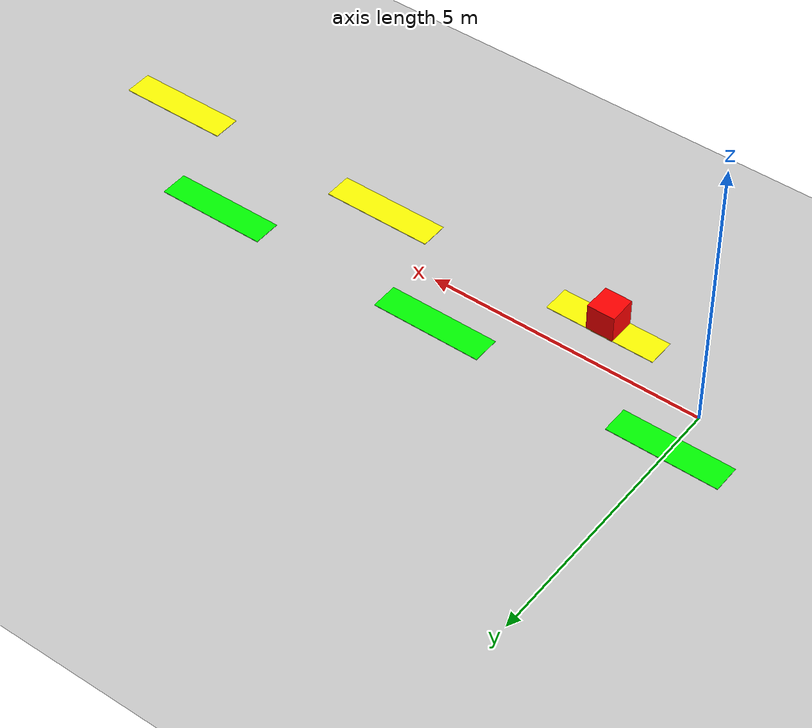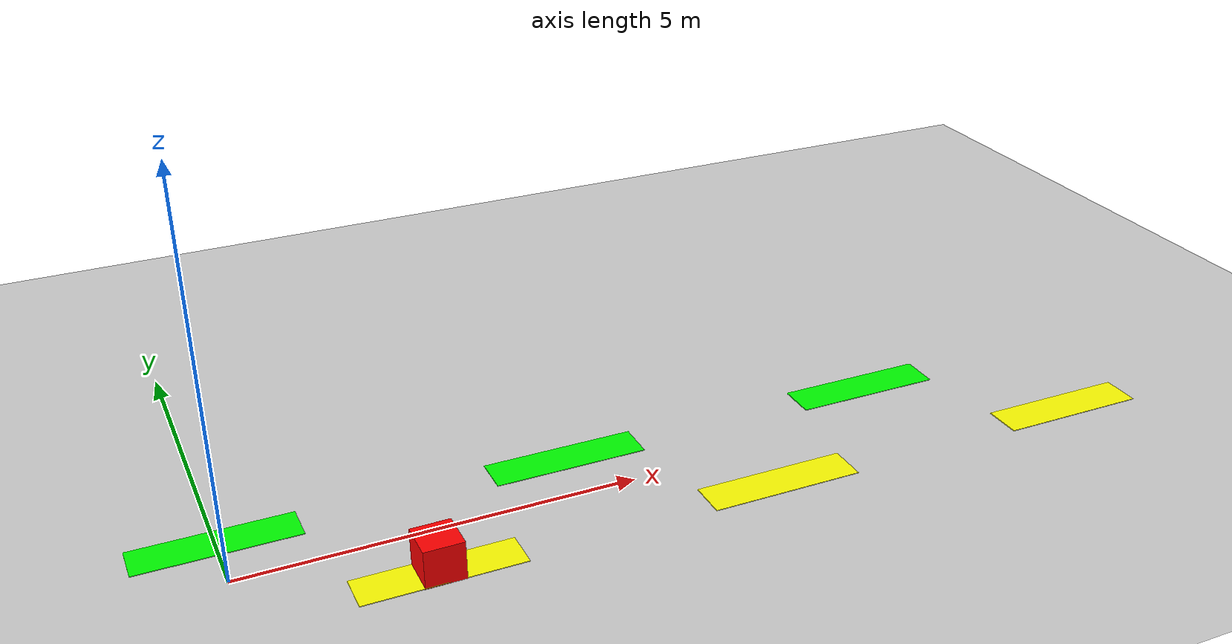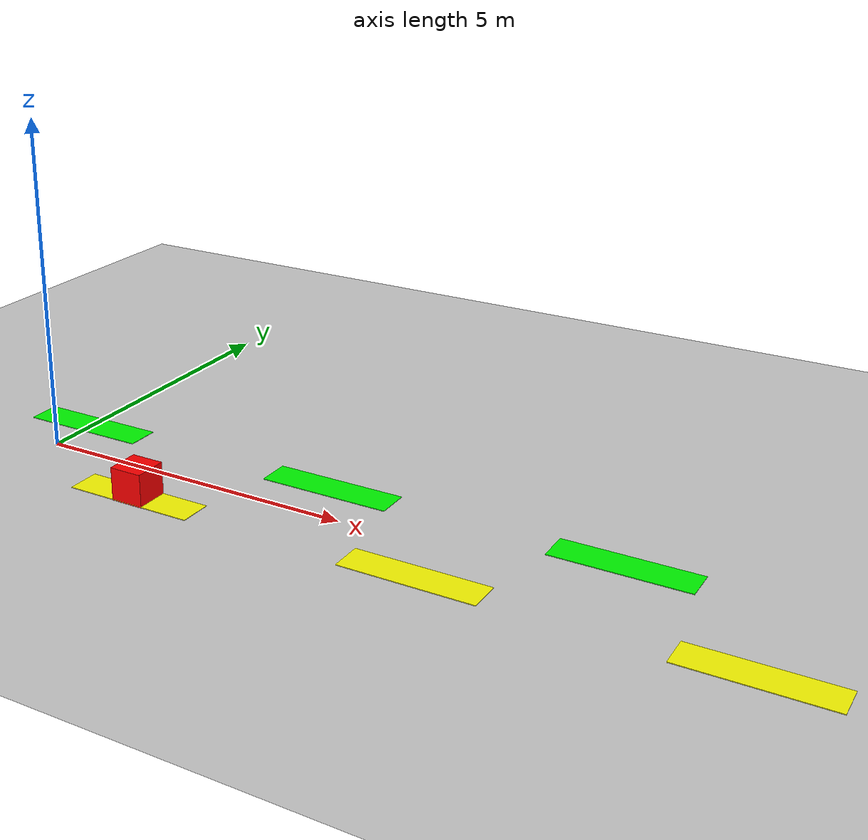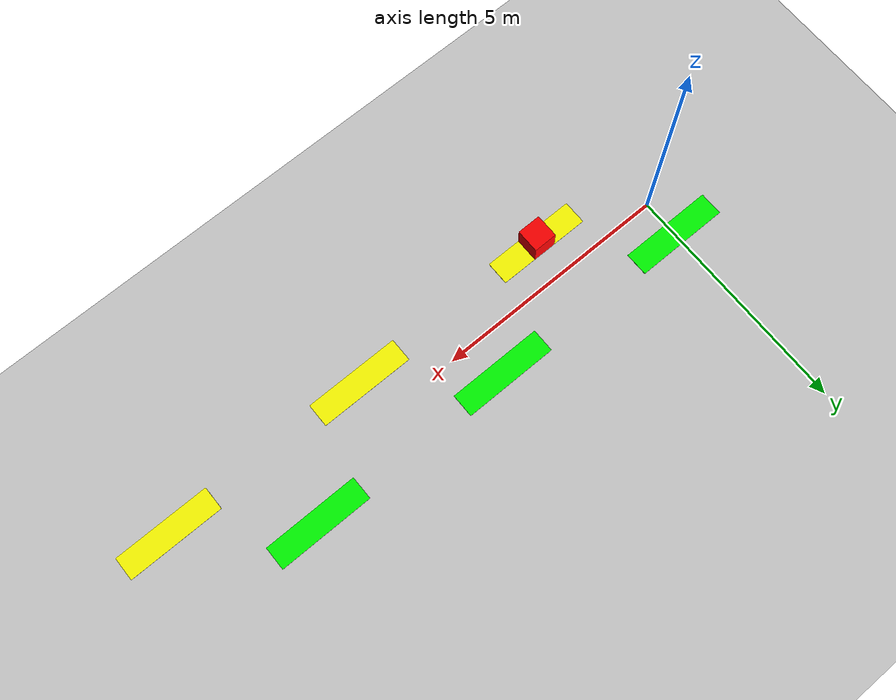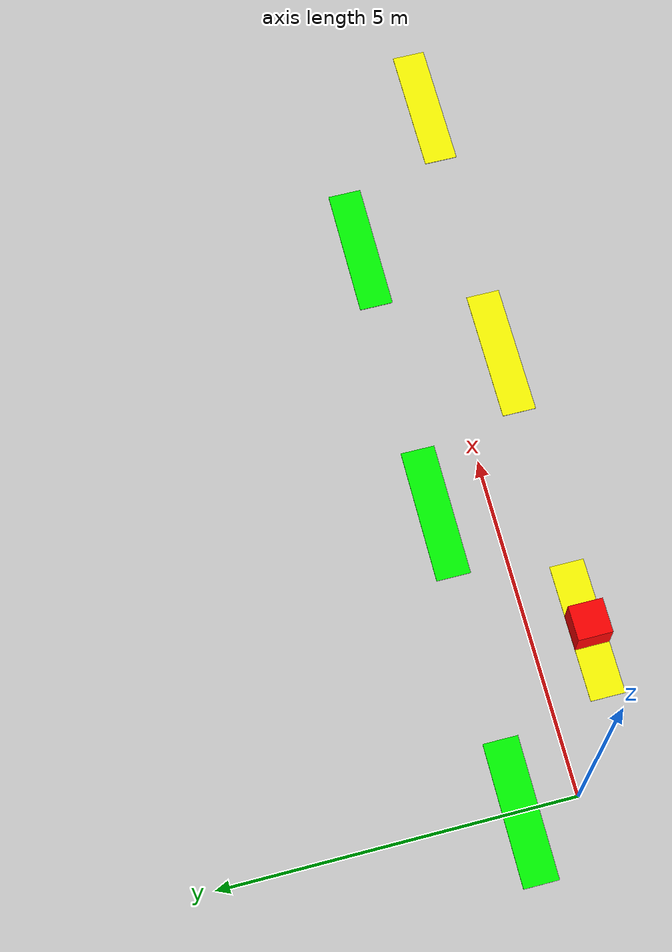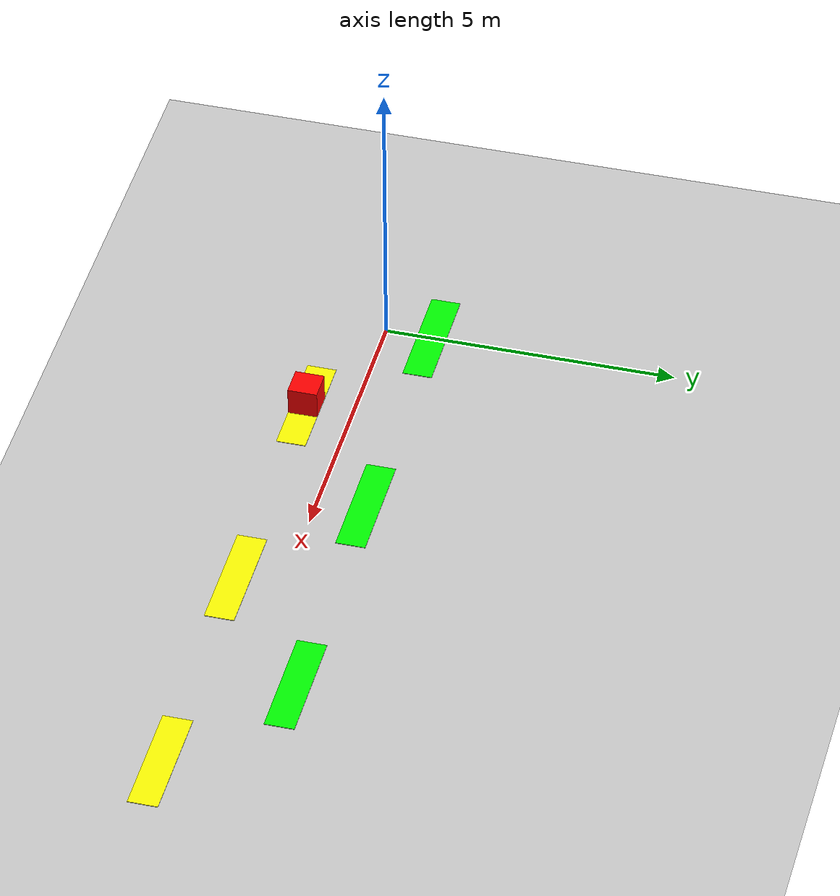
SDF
<?xml version="1.0" ?>
<sdf version="1.6">
  <world name="zigzag_lane_world">
    <include>
      <uri>model://sun</uri>
    </include>
    <include>
      <uri>model://ground_plane</uri>
    </include>

    <!-- Zigzag Lanes: Alternating Green and Yellow -->
    <model name="zigzag_lane">
      <static>true</static>
      <link name="zigzag_lane_link">

        <!-- Lane 0 - Green -->
        <visual name="lane_section_0">
          <pose>0.0 0.8 0.01 0 0 0</pose>
          <geometry>
            <box><size>2.0 0.5 0.01</size></box>
          </geometry>
          <material>
            <ambient>0 1 0 1</ambient>
            <diffuse>0 1 0 1</diffuse>
          </material>
        </visual>

        <!-- Lane 1 - Yellow -->
        <visual name="lane_section_1">
          <pose>2.2 -0.8 0.01 0 0 0</pose>
          <geometry>
            <box><size>2.0 0.5 0.01</size></box>
          </geometry>
          <material>
            <ambient>1 1 0 1</ambient>
            <diffuse>1 1 0 1</diffuse>
          </material>
        </visual>

        <!-- Lane 2 - Green -->
        <visual name="lane_section_2">
          <pose>4.4 0.8 0.01 0 0 0</pose>
          <geometry>
            <box><size>2.0 0.5 0.01</size></box>
          </geometry>
          <material>
            <ambient>0 1 0 1</ambient>
            <diffuse>0 1 0 1</diffuse>
          </material>
        </visual>

        <!-- Lane 3 - Yellow -->
        <visual name="lane_section_3">
          <pose>6.6 -0.8 0.01 0 0 0</pose>
          <geometry>
            <box><size>2.0 0.5 0.01</size></box>
          </geometry>
          <material>
            <ambient>1 1 0 1</ambient>
            <diffuse>1 1 0 1</diffuse>
          </material>
        </visual>

        <!-- Lane 4 - Green -->
        <visual name="lane_section_4">
          <pose>8.8 0.8 0.01 0 0 0</pose>
          <geometry>
            <box><size>2.0 0.5 0.01</size></box>
          </geometry>
          <material>
            <ambient>0 1 0 1</ambient>
            <diffuse>0 1 0 1</diffuse>
          </material>
        </visual>

        <!-- Lane 5 - Yellow -->
        <visual name="lane_section_5">
          <pose>11.0 -0.8 0.01 0 0 0</pose>
          <geometry>
            <box><size>2.0 0.5 0.01</size></box>
          </geometry>
          <material>
            <ambient>1 1 0 1</ambient>
            <diffuse>1 1 0 1</diffuse>
          </material>
        </visual>

      </link>
    </model>

    <!-- Obstacle -->
    <model name="obstacle_box">
      <static>true</static>
      <link name="obstacle_link">
        <pose>2.2 -0.8 0.25 0 0 0</pose> <!-- Placed on yellow lane -->
        <collision name="collision">
          <geometry>
            <box><size>0.5 0.5 0.5</size></box>
          </geometry>
        </collision>
        <visual name="visual">
          <geometry>
            <box><size>0.5 0.5 0.5</size></box>
          </geometry>
          <material>
            <ambient>1 0 0 1</ambient>
            <diffuse>1 0 0 1</diffuse>
          </material>
        </visual>
      </link>
    </model>

  </world>
</sdf>
